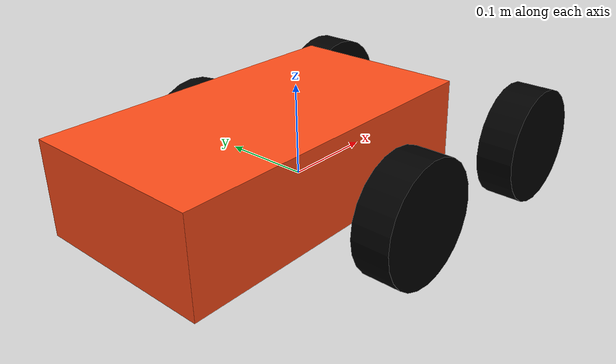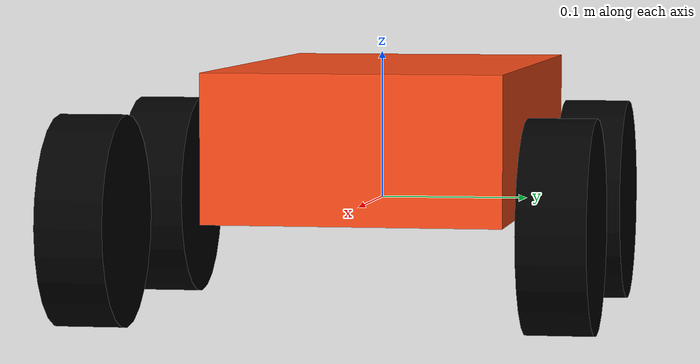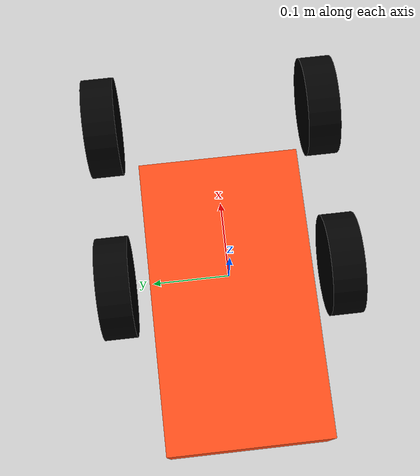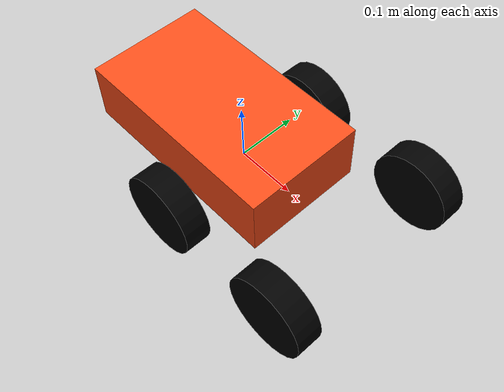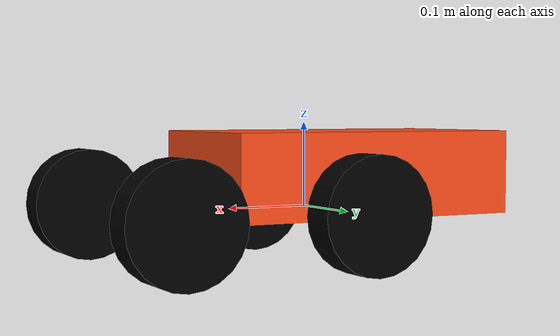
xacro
<?xml version="1.0"?>
<robot xmlns:xacro="http://www.ros.org/wiki/xacro">

    <xacro:property name="chassis_length" value="0.360"/>
    <xacro:property name="chassis_width" value="0.200"/>
    <xacro:property name="chassis_height" value="0.100"/>
    <xacro:property name="chassis_mass" value="1.0"/>
    <xacro:property name="wheel_radius" value="0.0675"/>
    <xacro:property name="wheel_thickness" value="0.043"/>
    <xacro:property name="wheel_mass" value="0.05"/>
    <xacro:property name="wheel_offset_x" value="0.226"/>
    <xacro:property name="wheel_offset_y" value="0.1485"/>
    <xacro:property name="wheel_offset_z" value="0.01"/>

    <material name="black">
        <color rgba="0 0 0 1"/>
    </material>
    <material name="orange">
        <color rgba="1 0.3 0.1 1"/>
    </material>

    <!-- Base Link -->
    <link name="base_link"/>

    <!-- Chassis -->
    <joint name="chassis_joint" type="fixed">
        <parent link="base_link"/>
        <child link="chassis"/>
        <origin xyz="${-wheel_offset_x} 0 ${-wheel_offset_z}"/>
    </joint>
    <link name="chassis">
        <visual>
            <origin xyz="${chassis_length/2} 0 ${chassis_height/2}"/>
            <geometry>
                <box size="${chassis_length} ${chassis_width} ${chassis_height}"/>
            </geometry>
            <material name="orange"/>
        </visual>
        <collision>
            <origin xyz="${chassis_length/2} 0 ${chassis_height/2}"/>
            <geometry>
                <box size="${chassis_length} ${chassis_width} ${chassis_height}"/>
            </geometry>
        </collision>
    </link>

    <!-- Wheels -->
    <xacro:macro name="wheel" params="name parent x y z rpy axis">
        <joint name="${name}_joint" type="continuous">
            <parent link="${parent}"/>
            <child link="${name}"/>
            <origin xyz="${x} ${y} ${z}" rpy="${rpy}"/>
            <axis xyz="${axis}"/>
        </joint>
        <link name="${name}">
            <visual>
                <geometry>
                    <cylinder radius="${wheel_radius}" length="${wheel_thickness}"/>
                </geometry>
                <material name="black"/>
            </visual>
            <collision>
                <geometry>
                    <cylinder radius="${wheel_radius}" length="${wheel_thickness}"/>
                </geometry>
            </collision>
        </link>
    </xacro:macro>

    <xacro:wheel name="left_back_wheel" parent="base_link" x="0" y="${wheel_offset_y}" z="0" rpy="-${pi/2} 0 0" axis="0 0 1"/>
    <xacro:wheel name="left_front_wheel" parent="base_link" x="${wheel_offset_x}" y="${wheel_offset_y}" z="0" rpy="-${pi/2} 0 0" axis="0 0 1"/>
    <xacro:wheel name="right_back_wheel" parent="base_link" x="0" y="${-wheel_offset_y}" z="0" rpy="${pi/2} 0 0" axis="0 0 -1"/>
    <xacro:wheel name="right_front_wheel" parent="base_link" x="${wheel_offset_x}" y="${-wheel_offset_y}" z="0" rpy="${pi/2} 0 0" axis="0 0 -1"/>

</robot>
